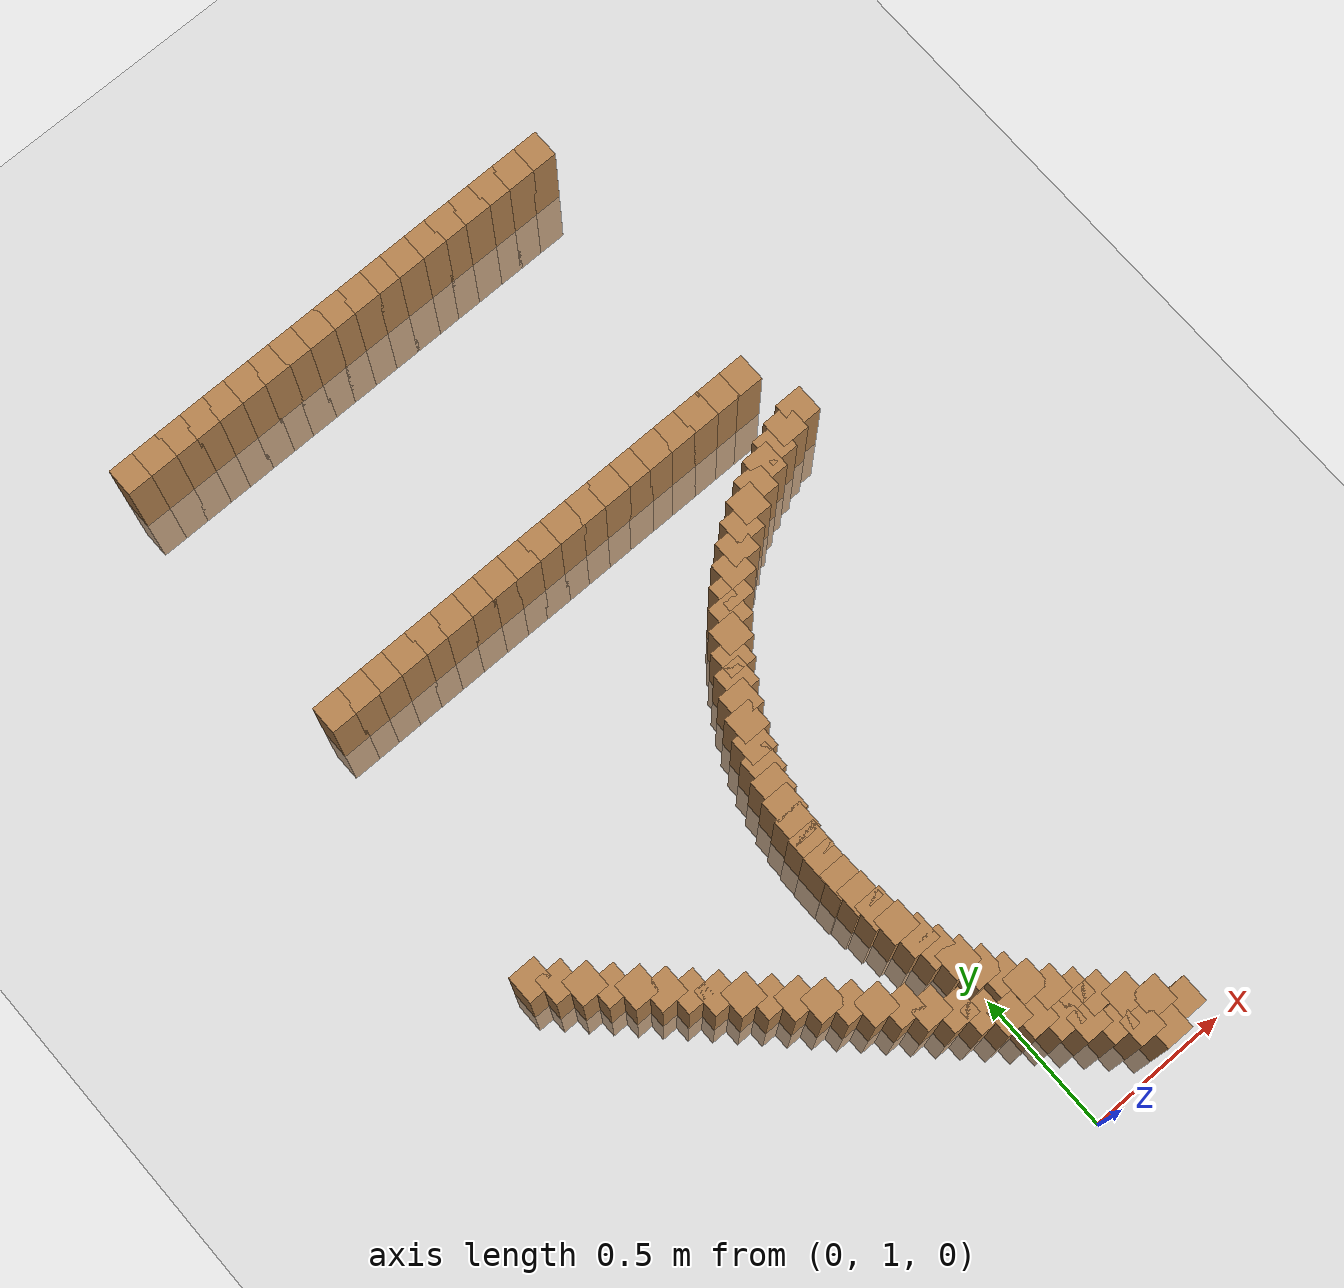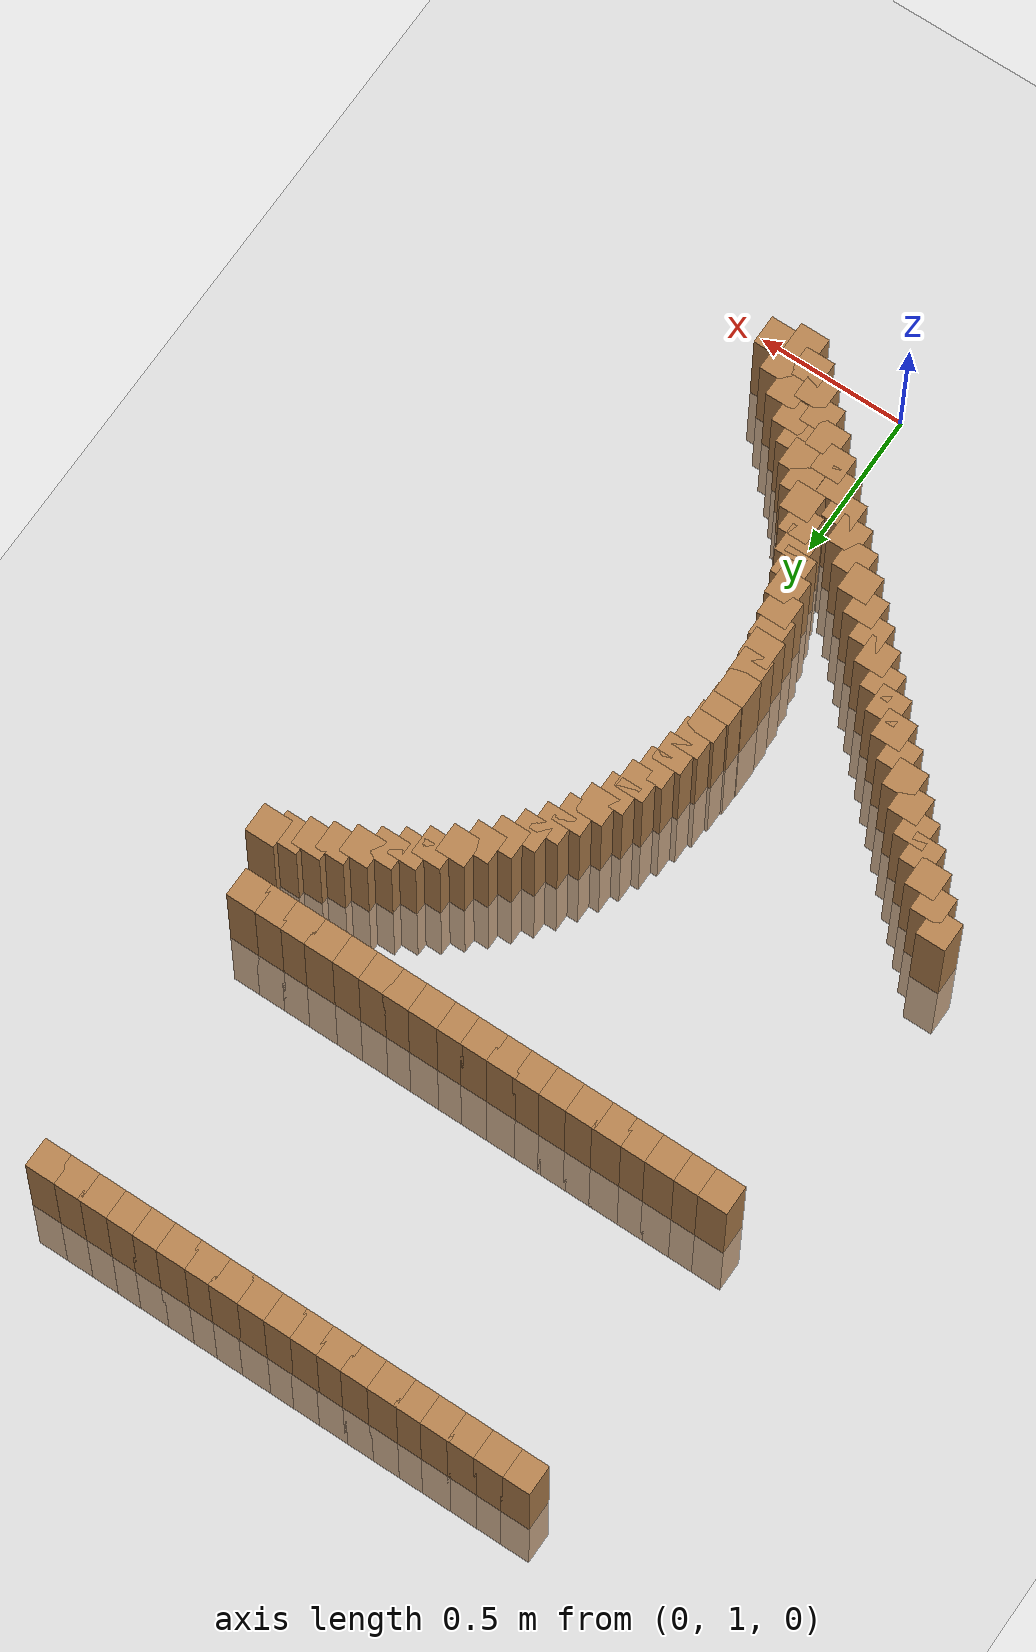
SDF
<sdf version="1.6">
 <world name="default">
  <model name="ground_plane">
   <static>1</static>
   <link name="link">
    <collision name="collision">
     <geometry><plane><normal>0 0 1</normal><size>100 100</size></plane></geometry>
     <surface><friction><ode><mu>100</mu><mu2>50</mu2></ode></friction></surface>
    </collision>
    <visual name="visual">
     <cast_shadows>0</cast_shadows>
     <geometry><plane><normal>0 0 1</normal><size>100 100</size></plane></geometry>
     <material>
      <script><uri>file://media/materials/scripts/gazebo.material</uri><name>Gazebo/Grey</name></script>
     </material>
    </visual>
   </link>
  </model>
  <model name="track">
   <link name="inner_16">
    <pose>-1.038057 2.426670 0.000000 0 -0 0</pose>
    <collision name="collision"><geometry><box><size>0.1 0.1 0.7</size></box></geometry></collision>
    <visual name="visual">
     <geometry><box><size>0.1 0.1 0.7</size></box></geometry>
     <material>
      <script><uri>file://media/materials/scripts/gazebo.material</uri><name>Gazebo/Wood</name></script>
     </material>
    </visual>
   </link>
   <link name="inner_17">
    <pose>-0.982171 2.370784 0.000000 0 -0 0</pose>
    <collision name="collision"><geometry><box><size>0.1 0.1 0.7</size></box></geometry></collision>
    <visual name="visual">
     <geometry><box><size>0.1 0.1 0.7</size></box></geometry>
     <material>
      <script><uri>file://media/materials/scripts/gazebo.material</uri><name>Gazebo/Wood</name></script>
     </material>
    </visual>
   </link>
   <link name="inner_18">
    <pose>-0.926284 2.314897 0.000000 0 -0 0</pose>
    <collision name="collision"><geometry><box><size>0.1 0.1 0.7</size></box></geometry></collision>
    <visual name="visual">
     <geometry><box><size>0.1 0.1 0.7</size></box></geometry>
     <material>
      <script><uri>file://media/materials/scripts/gazebo.material</uri><name>Gazebo/Wood</name></script>
     </material>
    </visual>
   </link>
   <link name="inner_19">
    <pose>-0.870398 2.259011 0.000000 0 -0 0</pose>
    <collision name="collision"><geometry><box><size>0.1 0.1 0.7</size></box></geometry></collision>
    <visual name="visual">
     <geometry><box><size>0.1 0.1 0.7</size></box></geometry>
     <material>
      <script><uri>file://media/materials/scripts/gazebo.material</uri><name>Gazebo/Wood</name></script>
     </material>
    </visual>
   </link>
   <link name="inner_20">
    <pose>-0.814512 2.203125 0.000000 0 -0 0</pose>
    <collision name="collision"><geometry><box><size>0.1 0.1 0.7</size></box></geometry></collision>
    <visual name="visual">
     <geometry><box><size>0.1 0.1 0.7</size></box></geometry>
     <material>
      <script><uri>file://media/materials/scripts/gazebo.material</uri><name>Gazebo/Wood</name></script>
     </material>
    </visual>
   </link>
   <link name="inner_21">
    <pose>-0.758625 2.147238 0.000000 0 -0 0</pose>
    <collision name="collision"><geometry><box><size>0.1 0.1 0.7</size></box></geometry></collision>
    <visual name="visual">
     <geometry><box><size>0.1 0.1 0.7</size></box></geometry>
     <material>
      <script><uri>file://media/materials/scripts/gazebo.material</uri><name>Gazebo/Wood</name></script>
     </material>
    </visual>
   </link>
   <link name="inner_22">
    <pose>-0.702739 2.091352 0.000000 0 -0 0</pose>
    <collision name="collision"><geometry><box><size>0.1 0.1 0.7</size></box></geometry></collision>
    <visual name="visual">
     <geometry><box><size>0.1 0.1 0.7</size></box></geometry>
     <material>
      <script><uri>file://media/materials/scripts/gazebo.material</uri><name>Gazebo/Wood</name></script>
     </material>
    </visual>
   </link>
   <link name="inner_23">
    <pose>-0.646852 2.035465 0.000000 0 -0 0</pose>
    <collision name="collision"><geometry><box><size>0.1 0.1 0.7</size></box></geometry></collision>
    <visual name="visual">
     <geometry><box><size>0.1 0.1 0.7</size></box></geometry>
     <material>
      <script><uri>file://media/materials/scripts/gazebo.material</uri><name>Gazebo/Wood</name></script>
     </material>
    </visual>
   </link>
   <link name="inner_24">
    <pose>-0.590966 1.979579 0.000000 0 -0 0</pose>
    <collision name="collision"><geometry><box><size>0.1 0.1 0.7</size></box></geometry></collision>
    <visual name="visual">
     <geometry><box><size>0.1 0.1 0.7</size></box></geometry>
     <material>
      <script><uri>file://media/materials/scripts/gazebo.material</uri><name>Gazebo/Wood</name></script>
     </material>
    </visual>
   </link>
   <link name="inner_25">
    <pose>-0.535080 1.923693 0.000000 0 -0 0</pose>
    <collision name="collision"><geometry><box><size>0.1 0.1 0.7</size></box></geometry></collision>
    <visual name="visual">
     <geometry><box><size>0.1 0.1 0.7</size></box></geometry>
     <material>
      <script><uri>file://media/materials/scripts/gazebo.material</uri><name>Gazebo/Wood</name></script>
     </material>
    </visual>
   </link>
   <link name="inner_26">
    <pose>-0.479193 1.867806 0.000000 0 -0 0</pose>
    <collision name="collision"><geometry><box><size>0.1 0.1 0.7</size></box></geometry></collision>
    <visual name="visual">
     <geometry><box><size>0.1 0.1 0.7</size></box></geometry>
     <material>
      <script><uri>file://media/materials/scripts/gazebo.material</uri><name>Gazebo/Wood</name></script>
     </material>
    </visual>
   </link>
   <link name="inner_27">
    <pose>-0.423307 1.811920 0.000000 0 -0 0</pose>
    <collision name="collision"><geometry><box><size>0.1 0.1 0.7</size></box></geometry></collision>
    <visual name="visual">
     <geometry><box><size>0.1 0.1 0.7</size></box></geometry>
     <material>
      <script><uri>file://media/materials/scripts/gazebo.material</uri><name>Gazebo/Wood</name></script>
     </material>
    </visual>
   </link>
   <link name="inner_28">
    <pose>-0.367420 1.756033 0.000000 0 -0 0</pose>
    <collision name="collision"><geometry><box><size>0.1 0.1 0.7</size></box></geometry></collision>
    <visual name="visual">
     <geometry><box><size>0.1 0.1 0.7</size></box></geometry>
     <material>
      <script><uri>file://media/materials/scripts/gazebo.material</uri><name>Gazebo/Wood</name></script>
     </material>
    </visual>
   </link>
   <link name="inner_29">
    <pose>-0.311534 1.700147 0.000000 0 -0 0</pose>
    <collision name="collision"><geometry><box><size>0.1 0.1 0.7</size></box></geometry></collision>
    <visual name="visual">
     <geometry><box><size>0.1 0.1 0.7</size></box></geometry>
     <material>
      <script><uri>file://media/materials/scripts/gazebo.material</uri><name>Gazebo/Wood</name></script>
     </material>
    </visual>
   </link>
   <link name="inner_30">
    <pose>-0.255648 1.644261 0.000000 0 -0 0</pose>
    <collision name="collision"><geometry><box><size>0.1 0.1 0.7</size></box></geometry></collision>
    <visual name="visual">
     <geometry><box><size>0.1 0.1 0.7</size></box></geometry>
     <material>
      <script><uri>file://media/materials/scripts/gazebo.material</uri><name>Gazebo/Wood</name></script>
     </material>
    </visual>
   </link>
   <link name="inner_31">
    <pose>-0.199761 1.588374 0.000000 0 -0 0</pose>
    <collision name="collision"><geometry><box><size>0.1 0.1 0.7</size></box></geometry></collision>
    <visual name="visual">
     <geometry><box><size>0.1 0.1 0.7</size></box></geometry>
     <material>
      <script><uri>file://media/materials/scripts/gazebo.material</uri><name>Gazebo/Wood</name></script>
     </material>
    </visual>
   </link>
   <link name="inner_32">
    <pose>-0.143875 1.532488 0.000000 0 -0 0</pose>
    <collision name="collision"><geometry><box><size>0.1 0.1 0.7</size></box></geometry></collision>
    <visual name="visual">
     <geometry><box><size>0.1 0.1 0.7</size></box></geometry>
     <material>
      <script><uri>file://media/materials/scripts/gazebo.material</uri><name>Gazebo/Wood</name></script>
     </material>
    </visual>
   </link>
   <link name="inner_33">
    <pose>-0.087989 1.476601 0.000000 0 -0 0</pose>
    <collision name="collision"><geometry><box><size>0.1 0.1 0.7</size></box></geometry></collision>
    <visual name="visual">
     <geometry><box><size>0.1 0.1 0.7</size></box></geometry>
     <material>
      <script><uri>file://media/materials/scripts/gazebo.material</uri><name>Gazebo/Wood</name></script>
     </material>
    </visual>
   </link>
   <link name="inner_34">
    <pose>-0.032102 1.420715 0.000000 0 -0 0</pose>
    <collision name="collision"><geometry><box><size>0.1 0.1 0.7</size></box></geometry></collision>
    <visual name="visual">
     <geometry><box><size>0.1 0.1 0.7</size></box></geometry>
     <material>
      <script><uri>file://media/materials/scripts/gazebo.material</uri><name>Gazebo/Wood</name></script>
     </material>
    </visual>
   </link>
   <link name="inner_35">
    <pose>0.023784 1.364829 0.000000 0 -0 0</pose>
    <collision name="collision"><geometry><box><size>0.1 0.1 0.7</size></box></geometry></collision>
    <visual name="visual">
     <geometry><box><size>0.1 0.1 0.7</size></box></geometry>
     <material>
      <script><uri>file://media/materials/scripts/gazebo.material</uri><name>Gazebo/Wood</name></script>
     </material>
    </visual>
   </link>
   <link name="inner_36">
    <pose>0.079671 1.308942 0.000000 0 -0 0</pose>
    <collision name="collision"><geometry><box><size>0.1 0.1 0.7</size></box></geometry></collision>
    <visual name="visual">
     <geometry><box><size>0.1 0.1 0.7</size></box></geometry>
     <material>
      <script><uri>file://media/materials/scripts/gazebo.material</uri><name>Gazebo/Wood</name></script>
     </material>
    </visual>
   </link>
   <link name="inner_37">
    <pose>0.135557 1.253056 0.000000 0 -0 0</pose>
    <collision name="collision"><geometry><box><size>0.1 0.1 0.7</size></box></geometry></collision>
    <visual name="visual">
     <geometry><box><size>0.1 0.1 0.7</size></box></geometry>
     <material>
      <script><uri>file://media/materials/scripts/gazebo.material</uri><name>Gazebo/Wood</name></script>
     </material>
    </visual>
   </link>
   <link name="inner_38">
    <pose>0.191443 1.197170 0.000000 0 -0 0</pose>
    <collision name="collision"><geometry><box><size>0.1 0.1 0.7</size></box></geometry></collision>
    <visual name="visual">
     <geometry><box><size>0.1 0.1 0.7</size></box></geometry>
     <material>
      <script><uri>file://media/materials/scripts/gazebo.material</uri><name>Gazebo/Wood</name></script>
     </material>
    </visual>
   </link>
   <link name="inner_39">
    <pose>0.247330 1.141283 0.000000 0 -0 0</pose>
    <collision name="collision"><geometry><box><size>0.1 0.1 0.7</size></box></geometry></collision>
    <visual name="visual">
     <geometry><box><size>0.1 0.1 0.7</size></box></geometry>
     <material>
      <script><uri>file://media/materials/scripts/gazebo.material</uri><name>Gazebo/Wood</name></script>
     </material>
    </visual>
   </link>
   <link name="inner_40">
    <pose>0.303216 1.085397 0.000000 0 -0 0</pose>
    <collision name="collision"><geometry><box><size>0.1 0.1 0.7</size></box></geometry></collision>
    <visual name="visual">
     <geometry><box><size>0.1 0.1 0.7</size></box></geometry>
     <material>
      <script><uri>file://media/materials/scripts/gazebo.material</uri><name>Gazebo/Wood</name></script>
     </material>
    </visual>
   </link>
   <link name="inner_94">
    <pose>0.387073 1.116206 0.000000 0 -0 0</pose>
    <collision name="collision"><geometry><box><size>0.1 0.1 0.7</size></box></geometry></collision>
    <visual name="visual">
     <geometry><box><size>0.1 0.1 0.7</size></box></geometry>
     <material>
      <script><uri>file://media/materials/scripts/gazebo.material</uri><name>Gazebo/Wood</name></script>
     </material>
    </visual>
   </link>
   <link name="inner_95">
    <pose>0.325859 1.177420 0.000000 0 -0 0</pose>
    <collision name="collision"><geometry><box><size>0.1 0.1 0.7</size></box></geometry></collision>
    <visual name="visual">
     <geometry><box><size>0.1 0.1 0.7</size></box></geometry>
     <material>
      <script><uri>file://media/materials/scripts/gazebo.material</uri><name>Gazebo/Wood</name></script>
     </material>
    </visual>
   </link>
   <link name="inner_96">
    <pose>0.264644 1.238634 0.000000 0 -0 0</pose>
    <collision name="collision"><geometry><box><size>0.1 0.1 0.7</size></box></geometry></collision>
    <visual name="visual">
     <geometry><box><size>0.1 0.1 0.7</size></box></geometry>
     <material>
      <script><uri>file://media/materials/scripts/gazebo.material</uri><name>Gazebo/Wood</name></script>
     </material>
    </visual>
   </link>
   <link name="inner_97">
    <pose>0.203430 1.299849 0.000000 0 -0 0</pose>
    <collision name="collision"><geometry><box><size>0.1 0.1 0.7</size></box></geometry></collision>
    <visual name="visual">
     <geometry><box><size>0.1 0.1 0.7</size></box></geometry>
     <material>
      <script><uri>file://media/materials/scripts/gazebo.material</uri><name>Gazebo/Wood</name></script>
     </material>
    </visual>
   </link>
   <link name="inner_98">
    <pose>0.155312 1.350966 0.000000 0 -0 0</pose>
    <collision name="collision"><geometry><box><size>0.1 0.1 0.7</size></box></geometry></collision>
    <visual name="visual">
     <geometry><box><size>0.1 0.1 0.7</size></box></geometry>
     <material>
      <script><uri>file://media/materials/scripts/gazebo.material</uri><name>Gazebo/Wood</name></script>
     </material>
    </visual>
   </link>
   <link name="inner_99">
    <pose>0.110368 1.404894 0.000000 0 -0 0</pose>
    <collision name="collision"><geometry><box><size>0.1 0.1 0.7</size></box></geometry></collision>
    <visual name="visual">
     <geometry><box><size>0.1 0.1 0.7</size></box></geometry>
     <material>
      <script><uri>file://media/materials/scripts/gazebo.material</uri><name>Gazebo/Wood</name></script>
     </material>
    </visual>
   </link>
   <link name="inner_100">
    <pose>0.068762 1.461438 0.000000 0 -0 0</pose>
    <collision name="collision"><geometry><box><size>0.1 0.1 0.7</size></box></geometry></collision>
    <visual name="visual">
     <geometry><box><size>0.1 0.1 0.7</size></box></geometry>
     <material>
      <script><uri>file://media/materials/scripts/gazebo.material</uri><name>Gazebo/Wood</name></script>
     </material>
    </visual>
   </link>
   <link name="inner_101">
    <pose>0.030646 1.520391 0.000000 0 -0 0</pose>
    <collision name="collision"><geometry><box><size>0.1 0.1 0.7</size></box></geometry></collision>
    <visual name="visual">
     <geometry><box><size>0.1 0.1 0.7</size></box></geometry>
     <material>
      <script><uri>file://media/materials/scripts/gazebo.material</uri><name>Gazebo/Wood</name></script>
     </material>
    </visual>
   </link>
   <link name="inner_102">
    <pose>-0.003841 1.581538 0.000000 0 -0 0</pose>
    <collision name="collision"><geometry><box><size>0.1 0.1 0.7</size></box></geometry></collision>
    <visual name="visual">
     <geometry><box><size>0.1 0.1 0.7</size></box></geometry>
     <material>
      <script><uri>file://media/materials/scripts/gazebo.material</uri><name>Gazebo/Wood</name></script>
     </material>
    </visual>
   </link>
   <link name="inner_103">
    <pose>-0.034573 1.644655 0.000000 0 -0 0</pose>
    <collision name="collision"><geometry><box><size>0.1 0.1 0.7</size></box></geometry></collision>
    <visual name="visual">
     <geometry><box><size>0.1 0.1 0.7</size></box></geometry>
     <material>
      <script><uri>file://media/materials/scripts/gazebo.material</uri><name>Gazebo/Wood</name></script>
     </material>
    </visual>
   </link>
   <link name="inner_104">
    <pose>-0.061438 1.709513 0.000000 0 -0 0</pose>
    <collision name="collision"><geometry><box><size>0.1 0.1 0.7</size></box></geometry></collision>
    <visual name="visual">
     <geometry><box><size>0.1 0.1 0.7</size></box></geometry>
     <material>
      <script><uri>file://media/materials/scripts/gazebo.material</uri><name>Gazebo/Wood</name></script>
     </material>
    </visual>
   </link>
   <link name="inner_105">
    <pose>-0.084338 1.775875 0.000000 0 -0 0</pose>
    <collision name="collision"><geometry><box><size>0.1 0.1 0.7</size></box></geometry></collision>
    <visual name="visual">
     <geometry><box><size>0.1 0.1 0.7</size></box></geometry>
     <material>
      <script><uri>file://media/materials/scripts/gazebo.material</uri><name>Gazebo/Wood</name></script>
     </material>
    </visual>
   </link>
   <link name="inner_106">
    <pose>-0.103189 1.843498 0.000000 0 -0 0</pose>
    <collision name="collision"><geometry><box><size>0.1 0.1 0.7</size></box></geometry></collision>
    <visual name="visual">
     <geometry><box><size>0.1 0.1 0.7</size></box></geometry>
     <material>
      <script><uri>file://media/materials/scripts/gazebo.material</uri><name>Gazebo/Wood</name></script>
     </material>
    </visual>
   </link>
   <link name="inner_107">
    <pose>-0.117923 1.912136 0.000000 0 -0 0</pose>
    <collision name="collision"><geometry><box><size>0.1 0.1 0.7</size></box></geometry></collision>
    <visual name="visual">
     <geometry><box><size>0.1 0.1 0.7</size></box></geometry>
     <material>
      <script><uri>file://media/materials/scripts/gazebo.material</uri><name>Gazebo/Wood</name></script>
     </material>
    </visual>
   </link>
   <link name="inner_108">
    <pose>-0.128486 1.981538 0.000000 0 -0 0</pose>
    <collision name="collision"><geometry><box><size>0.1 0.1 0.7</size></box></geometry></collision>
    <visual name="visual">
     <geometry><box><size>0.1 0.1 0.7</size></box></geometry>
     <material>
      <script><uri>file://media/materials/scripts/gazebo.material</uri><name>Gazebo/Wood</name></script>
     </material>
    </visual>
   </link>
   <link name="inner_109">
    <pose>-0.134839 2.051452 0.000000 0 -0 0</pose>
    <collision name="collision"><geometry><box><size>0.1 0.1 0.7</size></box></geometry></collision>
    <visual name="visual">
     <geometry><box><size>0.1 0.1 0.7</size></box></geometry>
     <material>
      <script><uri>file://media/materials/scripts/gazebo.material</uri><name>Gazebo/Wood</name></script>
     </material>
    </visual>
   </link>
   <link name="inner_110">
    <pose>-0.136959 2.121622 0.000000 0 -0 0</pose>
    <collision name="collision"><geometry><box><size>0.1 0.1 0.7</size></box></geometry></collision>
    <visual name="visual">
     <geometry><box><size>0.1 0.1 0.7</size></box></geometry>
     <material>
      <script><uri>file://media/materials/scripts/gazebo.material</uri><name>Gazebo/Wood</name></script>
     </material>
    </visual>
   </link>
   <link name="inner_111">
    <pose>-0.134839 2.191791 0.000000 0 -0 0</pose>
    <collision name="collision"><geometry><box><size>0.1 0.1 0.7</size></box></geometry></collision>
    <visual name="visual">
     <geometry><box><size>0.1 0.1 0.7</size></box></geometry>
     <material>
      <script><uri>file://media/materials/scripts/gazebo.material</uri><name>Gazebo/Wood</name></script>
     </material>
    </visual>
   </link>
   <link name="inner_112">
    <pose>-0.128486 2.261705 0.000000 0 -0 0</pose>
    <collision name="collision"><geometry><box><size>0.1 0.1 0.7</size></box></geometry></collision>
    <visual name="visual">
     <geometry><box><size>0.1 0.1 0.7</size></box></geometry>
     <material>
      <script><uri>file://media/materials/scripts/gazebo.material</uri><name>Gazebo/Wood</name></script>
     </material>
    </visual>
   </link>
   <link name="inner_113">
    <pose>-0.117923 2.331107 0.000000 0 -0 0</pose>
    <collision name="collision"><geometry><box><size>0.1 0.1 0.7</size></box></geometry></collision>
    <visual name="visual">
     <geometry><box><size>0.1 0.1 0.7</size></box></geometry>
     <material>
      <script><uri>file://media/materials/scripts/gazebo.material</uri><name>Gazebo/Wood</name></script>
     </material>
    </visual>
   </link>
   <link name="inner_114">
    <pose>-0.103189 2.399745 0.000000 0 -0 0</pose>
    <collision name="collision"><geometry><box><size>0.1 0.1 0.7</size></box></geometry></collision>
    <visual name="visual">
     <geometry><box><size>0.1 0.1 0.7</size></box></geometry>
     <material>
      <script><uri>file://media/materials/scripts/gazebo.material</uri><name>Gazebo/Wood</name></script>
     </material>
    </visual>
   </link>
   <link name="inner_115">
    <pose>-0.084338 2.467368 0.000000 0 -0 0</pose>
    <collision name="collision"><geometry><box><size>0.1 0.1 0.7</size></box></geometry></collision>
    <visual name="visual">
     <geometry><box><size>0.1 0.1 0.7</size></box></geometry>
     <material>
      <script><uri>file://media/materials/scripts/gazebo.material</uri><name>Gazebo/Wood</name></script>
     </material>
    </visual>
   </link>
   <link name="inner_116">
    <pose>-0.061438 2.533730 0.000000 0 -0 0</pose>
    <collision name="collision"><geometry><box><size>0.1 0.1 0.7</size></box></geometry></collision>
    <visual name="visual">
     <geometry><box><size>0.1 0.1 0.7</size></box></geometry>
     <material>
      <script><uri>file://media/materials/scripts/gazebo.material</uri><name>Gazebo/Wood</name></script>
     </material>
    </visual>
   </link>
   <link name="inner_117">
    <pose>-0.034573 2.598588 0.000000 0 -0 0</pose>
    <collision name="collision"><geometry><box><size>0.1 0.1 0.7</size></box></geometry></collision>
    <visual name="visual">
     <geometry><box><size>0.1 0.1 0.7</size></box></geometry>
     <material>
      <script><uri>file://media/materials/scripts/gazebo.material</uri><name>Gazebo/Wood</name></script>
     </material>
    </visual>
   </link>
   <link name="inner_118">
    <pose>-0.003841 2.661705 0.000000 0 -0 0</pose>
    <collision name="collision"><geometry><box><size>0.1 0.1 0.7</size></box></geometry></collision>
    <visual name="visual">
     <geometry><box><size>0.1 0.1 0.7</size></box></geometry>
     <material>
      <script><uri>file://media/materials/scripts/gazebo.material</uri><name>Gazebo/Wood</name></script>
     </material>
    </visual>
   </link>
   <link name="inner_119">
    <pose>0.030646 2.722852 0.000000 0 -0 0</pose>
    <collision name="collision"><geometry><box><size>0.1 0.1 0.7</size></box></geometry></collision>
    <visual name="visual">
     <geometry><box><size>0.1 0.1 0.7</size></box></geometry>
     <material>
      <script><uri>file://media/materials/scripts/gazebo.material</uri><name>Gazebo/Wood</name></script>
     </material>
    </visual>
   </link>
   <link name="inner_120">
    <pose>0.068762 2.781805 0.000000 0 -0 0</pose>
    <collision name="collision"><geometry><box><size>0.1 0.1 0.7</size></box></geometry></collision>
    <visual name="visual">
     <geometry><box><size>0.1 0.1 0.7</size></box></geometry>
     <material>
      <script><uri>file://media/materials/scripts/gazebo.material</uri><name>Gazebo/Wood</name></script>
     </material>
    </visual>
   </link>
   <link name="inner_121">
    <pose>0.110368 2.838349 0.000000 0 -0 0</pose>
    <collision name="collision"><geometry><box><size>0.1 0.1 0.7</size></box></geometry></collision>
    <visual name="visual">
     <geometry><box><size>0.1 0.1 0.7</size></box></geometry>
     <material>
      <script><uri>file://media/materials/scripts/gazebo.material</uri><name>Gazebo/Wood</name></script>
     </material>
    </visual>
   </link>
   <link name="inner_122">
    <pose>0.155312 2.892278 0.000000 0 -0 0</pose>
    <collision name="collision"><geometry><box><size>0.1 0.1 0.7</size></box></geometry></collision>
    <visual name="visual">
     <geometry><box><size>0.1 0.1 0.7</size></box></geometry>
     <material>
      <script><uri>file://media/materials/scripts/gazebo.material</uri><name>Gazebo/Wood</name></script>
     </material>
    </visual>
   </link>
   <link name="inner_123">
    <pose>0.203430 2.943394 0.000000 0 -0 0</pose>
    <collision name="collision"><geometry><box><size>0.1 0.1 0.7</size></box></geometry></collision>
    <visual name="visual">
     <geometry><box><size>0.1 0.1 0.7</size></box></geometry>
     <material>
      <script><uri>file://media/materials/scripts/gazebo.material</uri><name>Gazebo/Wood</name></script>
     </material>
    </visual>
   </link>
   <link name="inner_124">
    <pose>0.254547 2.991512 0.000000 0 -0 0</pose>
    <collision name="collision"><geometry><box><size>0.1 0.1 0.7</size></box></geometry></collision>
    <visual name="visual">
     <geometry><box><size>0.1 0.1 0.7</size></box></geometry>
     <material>
      <script><uri>file://media/materials/scripts/gazebo.material</uri><name>Gazebo/Wood</name></script>
     </material>
    </visual>
   </link>
   <link name="inner_125">
    <pose>0.308475 3.036456 0.000000 0 -0 0</pose>
    <collision name="collision"><geometry><box><size>0.1 0.1 0.7</size></box></geometry></collision>
    <visual name="visual">
     <geometry><box><size>0.1 0.1 0.7</size></box></geometry>
     <material>
      <script><uri>file://media/materials/scripts/gazebo.material</uri><name>Gazebo/Wood</name></script>
     </material>
    </visual>
   </link>
   <link name="inner_126">
    <pose>0.365019 3.078062 0.000000 0 -0 0</pose>
    <collision name="collision"><geometry><box><size>0.1 0.1 0.7</size></box></geometry></collision>
    <visual name="visual">
     <geometry><box><size>0.1 0.1 0.7</size></box></geometry>
     <material>
      <script><uri>file://media/materials/scripts/gazebo.material</uri><name>Gazebo/Wood</name></script>
     </material>
    </visual>
   </link>
   <link name="inner_127">
    <pose>0.423972 3.116178 0.000000 0 -0 0</pose>
    <collision name="collision"><geometry><box><size>0.1 0.1 0.7</size></box></geometry></collision>
    <visual name="visual">
     <geometry><box><size>0.1 0.1 0.7</size></box></geometry>
     <material>
      <script><uri>file://media/materials/scripts/gazebo.material</uri><name>Gazebo/Wood</name></script>
     </material>
    </visual>
   </link>
   <link name="inner_128">
    <pose>0.485119 3.150665 0.000000 0 -0 0</pose>
    <collision name="collision"><geometry><box><size>0.1 0.1 0.7</size></box></geometry></collision>
    <visual name="visual">
     <geometry><box><size>0.1 0.1 0.7</size></box></geometry>
     <material>
      <script><uri>file://media/materials/scripts/gazebo.material</uri><name>Gazebo/Wood</name></script>
     </material>
    </visual>
   </link>
   <link name="inner_129">
    <pose>0.548237 3.181397 0.000000 0 -0 0</pose>
    <collision name="collision"><geometry><box><size>0.1 0.1 0.7</size></box></geometry></collision>
    <visual name="visual">
     <geometry><box><size>0.1 0.1 0.7</size></box></geometry>
     <material>
      <script><uri>file://media/materials/scripts/gazebo.material</uri><name>Gazebo/Wood</name></script>
     </material>
    </visual>
   </link>
   <link name="inner_130">
    <pose>0.613094 3.208262 0.000000 0 -0 0</pose>
    <collision name="collision"><geometry><box><size>0.1 0.1 0.7</size></box></geometry></collision>
    <visual name="visual">
     <geometry><box><size>0.1 0.1 0.7</size></box></geometry>
     <material>
      <script><uri>file://media/materials/scripts/gazebo.material</uri><name>Gazebo/Wood</name></script>
     </material>
    </visual>
   </link>
   <link name="inner_131">
    <pose>0.679456 3.231162 0.000000 0 -0 0</pose>
    <collision name="collision"><geometry><box><size>0.1 0.1 0.7</size></box></geometry></collision>
    <visual name="visual">
     <geometry><box><size>0.1 0.1 0.7</size></box></geometry>
     <material>
      <script><uri>file://media/materials/scripts/gazebo.material</uri><name>Gazebo/Wood</name></script>
     </material>
    </visual>
   </link>
   <link name="inner_132">
    <pose>0.747079 3.250013 0.000000 0 -0 0</pose>
    <collision name="collision"><geometry><box><size>0.1 0.1 0.7</size></box></geometry></collision>
    <visual name="visual">
     <geometry><box><size>0.1 0.1 0.7</size></box></geometry>
     <material>
      <script><uri>file://media/materials/scripts/gazebo.material</uri><name>Gazebo/Wood</name></script>
     </material>
    </visual>
   </link>
   <link name="inner_621">
    <pose>0.676014 3.445946 0.000000 0 -0 0</pose>
    <collision name="collision"><geometry><box><size>0.1 0.1 0.7</size></box></geometry></collision>
    <visual name="visual">
     <geometry><box><size>0.1 0.1 0.7</size></box></geometry>
     <material>
      <script><uri>file://media/materials/scripts/gazebo.material</uri><name>Gazebo/Wood</name></script>
     </material>
    </visual>
   </link>
   <link name="inner_622">
    <pose>0.585135 3.445946 0.000000 0 -0 0</pose>
    <collision name="collision"><geometry><box><size>0.1 0.1 0.7</size></box></geometry></collision>
    <visual name="visual">
     <geometry><box><size>0.1 0.1 0.7</size></box></geometry>
     <material>
      <script><uri>file://media/materials/scripts/gazebo.material</uri><name>Gazebo/Wood</name></script>
     </material>
    </visual>
   </link>
   <link name="inner_623">
    <pose>0.494257 3.445946 0.000000 0 -0 0</pose>
    <collision name="collision"><geometry><box><size>0.1 0.1 0.7</size></box></geometry></collision>
    <visual name="visual">
     <geometry><box><size>0.1 0.1 0.7</size></box></geometry>
     <material>
      <script><uri>file://media/materials/scripts/gazebo.material</uri><name>Gazebo/Wood</name></script>
     </material>
    </visual>
   </link>
   <link name="inner_624">
    <pose>0.403378 3.445946 0.000000 0 -0 0</pose>
    <collision name="collision"><geometry><box><size>0.1 0.1 0.7</size></box></geometry></collision>
    <visual name="visual">
     <geometry><box><size>0.1 0.1 0.7</size></box></geometry>
     <material>
      <script><uri>file://media/materials/scripts/gazebo.material</uri><name>Gazebo/Wood</name></script>
     </material>
    </visual>
   </link>
   <link name="inner_625">
    <pose>0.312500 3.445946 0.000000 0 -0 0</pose>
    <collision name="collision"><geometry><box><size>0.1 0.1 0.7</size></box></geometry></collision>
    <visual name="visual">
     <geometry><box><size>0.1 0.1 0.7</size></box></geometry>
     <material>
      <script><uri>file://media/materials/scripts/gazebo.material</uri><name>Gazebo/Wood</name></script>
     </material>
    </visual>
   </link>
   <link name="inner_626">
    <pose>0.221622 3.445946 0.000000 0 -0 0</pose>
    <collision name="collision"><geometry><box><size>0.1 0.1 0.7</size></box></geometry></collision>
    <visual name="visual">
     <geometry><box><size>0.1 0.1 0.7</size></box></geometry>
     <material>
      <script><uri>file://media/materials/scripts/gazebo.material</uri><name>Gazebo/Wood</name></script>
     </material>
    </visual>
   </link>
   <link name="inner_627">
    <pose>0.130743 3.445946 0.000000 0 -0 0</pose>
    <collision name="collision"><geometry><box><size>0.1 0.1 0.7</size></box></geometry></collision>
    <visual name="visual">
     <geometry><box><size>0.1 0.1 0.7</size></box></geometry>
     <material>
      <script><uri>file://media/materials/scripts/gazebo.material</uri><name>Gazebo/Wood</name></script>
     </material>
    </visual>
   </link>
   <link name="inner_628">
    <pose>0.039865 3.445946 0.000000 0 -0 0</pose>
    <collision name="collision"><geometry><box><size>0.1 0.1 0.7</size></box></geometry></collision>
    <visual name="visual">
     <geometry><box><size>0.1 0.1 0.7</size></box></geometry>
     <material>
      <script><uri>file://media/materials/scripts/gazebo.material</uri><name>Gazebo/Wood</name></script>
     </material>
    </visual>
   </link>
   <link name="inner_629">
    <pose>-0.051014 3.445946 0.000000 0 -0 0</pose>
    <collision name="collision"><geometry><box><size>0.1 0.1 0.7</size></box></geometry></collision>
    <visual name="visual">
     <geometry><box><size>0.1 0.1 0.7</size></box></geometry>
     <material>
      <script><uri>file://media/materials/scripts/gazebo.material</uri><name>Gazebo/Wood</name></script>
     </material>
    </visual>
   </link>
   <link name="inner_630">
    <pose>-0.141892 3.445946 0.000000 0 -0 0</pose>
    <collision name="collision"><geometry><box><size>0.1 0.1 0.7</size></box></geometry></collision>
    <visual name="visual">
     <geometry><box><size>0.1 0.1 0.7</size></box></geometry>
     <material>
      <script><uri>file://media/materials/scripts/gazebo.material</uri><name>Gazebo/Wood</name></script>
     </material>
    </visual>
   </link>
   <link name="inner_631">
    <pose>-0.232770 3.445946 0.000000 0 -0 0</pose>
    <collision name="collision"><geometry><box><size>0.1 0.1 0.7</size></box></geometry></collision>
    <visual name="visual">
     <geometry><box><size>0.1 0.1 0.7</size></box></geometry>
     <material>
      <script><uri>file://media/materials/scripts/gazebo.material</uri><name>Gazebo/Wood</name></script>
     </material>
    </visual>
   </link>
   <link name="inner_632">
    <pose>-0.323649 3.445946 0.000000 0 -0 0</pose>
    <collision name="collision"><geometry><box><size>0.1 0.1 0.7</size></box></geometry></collision>
    <visual name="visual">
     <geometry><box><size>0.1 0.1 0.7</size></box></geometry>
     <material>
      <script><uri>file://media/materials/scripts/gazebo.material</uri><name>Gazebo/Wood</name></script>
     </material>
    </visual>
   </link>
   <link name="inner_633">
    <pose>-0.414527 3.445946 0.000000 0 -0 0</pose>
    <collision name="collision"><geometry><box><size>0.1 0.1 0.7</size></box></geometry></collision>
    <visual name="visual">
     <geometry><box><size>0.1 0.1 0.7</size></box></geometry>
     <material>
      <script><uri>file://media/materials/scripts/gazebo.material</uri><name>Gazebo/Wood</name></script>
     </material>
    </visual>
   </link>
   <link name="inner_634">
    <pose>-0.505405 3.445946 0.000000 0 -0 0</pose>
    <collision name="collision"><geometry><box><size>0.1 0.1 0.7</size></box></geometry></collision>
    <visual name="visual">
     <geometry><box><size>0.1 0.1 0.7</size></box></geometry>
     <material>
      <script><uri>file://media/materials/scripts/gazebo.material</uri><name>Gazebo/Wood</name></script>
     </material>
    </visual>
   </link>
   <link name="inner_635">
    <pose>-0.596284 3.445946 0.000000 0 -0 0</pose>
    <collision name="collision"><geometry><box><size>0.1 0.1 0.7</size></box></geometry></collision>
    <visual name="visual">
     <geometry><box><size>0.1 0.1 0.7</size></box></geometry>
     <material>
      <script><uri>file://media/materials/scripts/gazebo.material</uri><name>Gazebo/Wood</name></script>
     </material>
    </visual>
   </link>
   <link name="inner_636">
    <pose>-0.687162 3.445946 0.000000 0 -0 0</pose>
    <collision name="collision"><geometry><box><size>0.1 0.1 0.7</size></box></geometry></collision>
    <visual name="visual">
     <geometry><box><size>0.1 0.1 0.7</size></box></geometry>
     <material>
      <script><uri>file://media/materials/scripts/gazebo.material</uri><name>Gazebo/Wood</name></script>
     </material>
    </visual>
   </link>
   <link name="inner_637">
    <pose>-0.778041 3.445946 0.000000 0 -0 0</pose>
    <collision name="collision"><geometry><box><size>0.1 0.1 0.7</size></box></geometry></collision>
    <visual name="visual">
     <geometry><box><size>0.1 0.1 0.7</size></box></geometry>
     <material>
      <script><uri>file://media/materials/scripts/gazebo.material</uri><name>Gazebo/Wood</name></script>
     </material>
    </visual>
   </link>
   <link name="inner_638">
    <pose>-0.868919 3.445946 0.000000 0 -0 0</pose>
    <collision name="collision"><geometry><box><size>0.1 0.1 0.7</size></box></geometry></collision>
    <visual name="visual">
     <geometry><box><size>0.1 0.1 0.7</size></box></geometry>
     <material>
      <script><uri>file://media/materials/scripts/gazebo.material</uri><name>Gazebo/Wood</name></script>
     </material>
    </visual>
   </link>
   <link name="inner_639">
    <pose>-0.959797 3.445946 0.000000 0 -0 0</pose>
    <collision name="collision"><geometry><box><size>0.1 0.1 0.7</size></box></geometry></collision>
    <visual name="visual">
     <geometry><box><size>0.1 0.1 0.7</size></box></geometry>
     <material>
      <script><uri>file://media/materials/scripts/gazebo.material</uri><name>Gazebo/Wood</name></script>
     </material>
    </visual>
   </link>
   <link name="outer_621">
    <pose>0.676014 4.445946 0.000000 0 -0 0</pose>
    <collision name="collision"><geometry><box><size>0.1 0.1 0.7</size></box></geometry></collision>
    <visual name="visual">
     <geometry><box><size>0.1 0.1 0.7</size></box></geometry>
     <material>
      <script><uri>file://media/materials/scripts/gazebo.material</uri><name>Gazebo/Wood</name></script>
     </material>
    </visual>
   </link>
   <link name="outer_622">
    <pose>0.585135 4.445946 0.000000 0 -0 0</pose>
    <collision name="collision"><geometry><box><size>0.1 0.1 0.7</size></box></geometry></collision>
    <visual name="visual">
     <geometry><box><size>0.1 0.1 0.7</size></box></geometry>
     <material>
      <script><uri>file://media/materials/scripts/gazebo.material</uri><name>Gazebo/Wood</name></script>
     </material>
    </visual>
   </link>
   <link name="outer_623">
    <pose>0.494257 4.445946 0.000000 0 -0 0</pose>
    <collision name="collision"><geometry><box><size>0.1 0.1 0.7</size></box></geometry></collision>
    <visual name="visual">
     <geometry><box><size>0.1 0.1 0.7</size></box></geometry>
     <material>
      <script><uri>file://media/materials/scripts/gazebo.material</uri><name>Gazebo/Wood</name></script>
     </material>
    </visual>
   </link>
   <link name="outer_624">
    <pose>0.403378 4.445946 0.000000 0 -0 0</pose>
    <collision name="collision"><geometry><box><size>0.1 0.1 0.7</size></box></geometry></collision>
    <visual name="visual">
     <geometry><box><size>0.1 0.1 0.7</size></box></geometry>
     <material>
      <script><uri>file://media/materials/scripts/gazebo.material</uri><name>Gazebo/Wood</name></script>
     </material>
    </visual>
   </link>
   <link name="outer_625">
    <pose>0.312500 4.445946 0.000000 0 -0 0</pose>
    <collision name="collision"><geometry><box><size>0.1 0.1 0.7</size></box></geometry></collision>
    <visual name="visual">
     <geometry><box><size>0.1 0.1 0.7</size></box></geometry>
     <material>
      <script><uri>file://media/materials/scripts/gazebo.material</uri><name>Gazebo/Wood</name></script>
     </material>
    </visual>
   </link>
   <link name="outer_626">
    <pose>0.221622 4.445946 0.000000 0 -0 0</pose>
    <collision name="collision"><geometry><box><size>0.1 0.1 0.7</size></box></geometry></collision>
    <visual name="visual">
     <geometry><box><size>0.1 0.1 0.7</size></box></geometry>
     <material>
      <script><uri>file://media/materials/scripts/gazebo.material</uri><name>Gazebo/Wood</name></script>
     </material>
    </visual>
   </link>
   <link name="outer_627">
    <pose>0.130743 4.445946 0.000000 0 -0 0</pose>
    <collision name="collision"><geometry><box><size>0.1 0.1 0.7</size></box></geometry></collision>
    <visual name="visual">
     <geometry><box><size>0.1 0.1 0.7</size></box></geometry>
     <material>
      <script><uri>file://media/materials/scripts/gazebo.material</uri><name>Gazebo/Wood</name></script>
     </material>
    </visual>
   </link>
   <link name="outer_628">
    <pose>0.039865 4.445946 0.000000 0 -0 0</pose>
    <collision name="collision"><geometry><box><size>0.1 0.1 0.7</size></box></geometry></collision>
    <visual name="visual">
     <geometry><box><size>0.1 0.1 0.7</size></box></geometry>
     <material>
      <script><uri>file://media/materials/scripts/gazebo.material</uri><name>Gazebo/Wood</name></script>
     </material>
    </visual>
   </link>
   <link name="outer_629">
    <pose>-0.051014 4.445946 0.000000 0 -0 0</pose>
    <collision name="collision"><geometry><box><size>0.1 0.1 0.7</size></box></geometry></collision>
    <visual name="visual">
     <geometry><box><size>0.1 0.1 0.7</size></box></geometry>
     <material>
      <script><uri>file://media/materials/scripts/gazebo.material</uri><name>Gazebo/Wood</name></script>
     </material>
    </visual>
   </link>
   <link name="outer_630">
    <pose>-0.141892 4.445946 0.000000 0 -0 0</pose>
    <collision name="collision"><geometry><box><size>0.1 0.1 0.7</size></box></geometry></collision>
    <visual name="visual">
     <geometry><box><size>0.1 0.1 0.7</size></box></geometry>
     <material>
      <script><uri>file://media/materials/scripts/gazebo.material</uri><name>Gazebo/Wood</name></script>
     </material>
    </visual>
   </link>
   <link name="outer_631">
    <pose>-0.232770 4.445946 0.000000 0 -0 0</pose>
    <collision name="collision"><geometry><box><size>0.1 0.1 0.7</size></box></geometry></collision>
    <visual name="visual">
     <geometry><box><size>0.1 0.1 0.7</size></box></geometry>
     <material>
      <script><uri>file://media/materials/scripts/gazebo.material</uri><name>Gazebo/Wood</name></script>
     </material>
    </visual>
   </link>
   <link name="outer_632">
    <pose>-0.323649 4.445946 0.000000 0 -0 0</pose>
    <collision name="collision"><geometry><box><size>0.1 0.1 0.7</size></box></geometry></collision>
    <visual name="visual">
     <geometry><box><size>0.1 0.1 0.7</size></box></geometry>
     <material>
      <script><uri>file://media/materials/scripts/gazebo.material</uri><name>Gazebo/Wood</name></script>
     </material>
    </visual>
   </link>
   <link name="outer_633">
    <pose>-0.414527 4.445946 0.000000 0 -0 0</pose>
    <collision name="collision"><geometry><box><size>0.1 0.1 0.7</size></box></geometry></collision>
    <visual name="visual">
     <geometry><box><size>0.1 0.1 0.7</size></box></geometry>
     <material>
      <script><uri>file://media/materials/scripts/gazebo.material</uri><name>Gazebo/Wood</name></script>
     </material>
    </visual>
   </link>
   <link name="outer_634">
    <pose>-0.505405 4.445946 0.000000 0 -0 0</pose>
    <collision name="collision"><geometry><box><size>0.1 0.1 0.7</size></box></geometry></collision>
    <visual name="visual">
     <geometry><box><size>0.1 0.1 0.7</size></box></geometry>
     <material>
      <script><uri>file://media/materials/scripts/gazebo.material</uri><name>Gazebo/Wood</name></script>
     </material>
    </visual>
   </link>
   <link name="outer_635">
    <pose>-0.596284 4.445946 0.000000 0 -0 0</pose>
    <collision name="collision"><geometry><box><size>0.1 0.1 0.7</size></box></geometry></collision>
    <visual name="visual">
     <geometry><box><size>0.1 0.1 0.7</size></box></geometry>
     <material>
      <script><uri>file://media/materials/scripts/gazebo.material</uri><name>Gazebo/Wood</name></script>
     </material>
    </visual>
   </link>
   <link name="outer_636">
    <pose>-0.687162 4.445946 0.000000 0 -0 0</pose>
    <collision name="collision"><geometry><box><size>0.1 0.1 0.7</size></box></geometry></collision>
    <visual name="visual">
     <geometry><box><size>0.1 0.1 0.7</size></box></geometry>
     <material>
      <script><uri>file://media/materials/scripts/gazebo.material</uri><name>Gazebo/Wood</name></script>
     </material>
    </visual>
   </link>
   <link name="outer_637">
    <pose>-0.778041 4.445946 0.000000 0 -0 0</pose>
    <collision name="collision"><geometry><box><size>0.1 0.1 0.7</size></box></geometry></collision>
    <visual name="visual">
     <geometry><box><size>0.1 0.1 0.7</size></box></geometry>
     <material>
      <script><uri>file://media/materials/scripts/gazebo.material</uri><name>Gazebo/Wood</name></script>
     </material>
    </visual>
   </link>
   <link name="outer_638">
    <pose>-0.868919 4.445946 0.000000 0 -0 0</pose>
    <collision name="collision"><geometry><box><size>0.1 0.1 0.7</size></box></geometry></collision>
    <visual name="visual">
     <geometry><box><size>0.1 0.1 0.7</size></box></geometry>
     <material>
      <script><uri>file://media/materials/scripts/gazebo.material</uri><name>Gazebo/Wood</name></script>
     </material>
    </visual>
   </link>
   <link name="outer_639">
    <pose>-0.959797 4.445946 0.000000 0 -0 0</pose>
    <collision name="collision"><geometry><box><size>0.1 0.1 0.7</size></box></geometry></collision>
    <visual name="visual">
     <geometry><box><size>0.1 0.1 0.7</size></box></geometry>
     <material>
      <script><uri>file://media/materials/scripts/gazebo.material</uri><name>Gazebo/Wood</name></script>
     </material>
    </visual>
   </link>
   <static>1</static>
  </model>
 </world>
</sdf>
